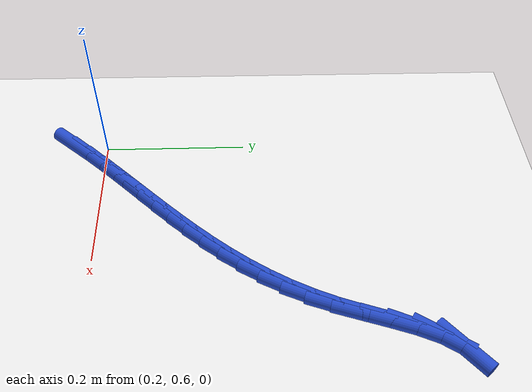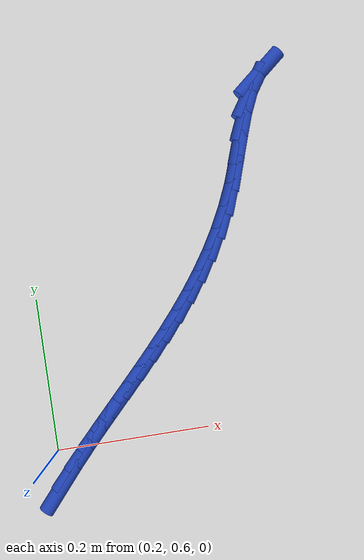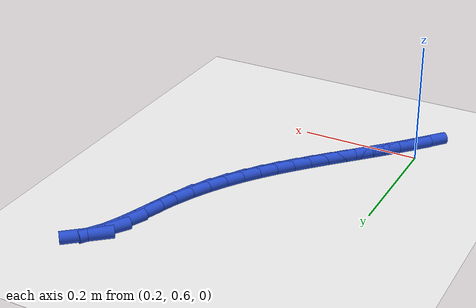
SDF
<sdf version="1.6">
 <world name="default">
  <model name="ground_plane">
   <static>1</static>
   <link name="link">
    <collision name="collision">
     <geometry><plane><normal>0 0 1</normal><size>100 100</size></plane></geometry>
     <surface><friction><ode><mu>100</mu><mu2>50</mu2></ode></friction></surface>
    </collision>
    <visual name="visual">
     <cast_shadows>0</cast_shadows>
     <geometry><plane><normal>0 0 1</normal><size>100 100</size></plane></geometry>
     <material>
      <script><uri>file://media/materials/scripts/gazebo.material</uri><name>Gazebo/WhiteGlow</name></script>
     </material>
    </visual>
   </link>
  </model>
  <model name="line">
   <link name="link_20">
    <pose>0.20040141904232106 0.5562227606023049 0.01 0 1.57 0.8612258308895455</pose>
    <collision name="collision">
     <geometry><cylinder><radius>0.01</radius><length>0.08</length></cylinder></geometry>
    </collision>
    <visual name="visual">
     <material>
      <script><name>Gazebo/Blue</name><uri>file://media/materials/scripts/gazebo.material</uri></script>
     </material>
     <geometry><cylinder><radius>0.01</radius><length>0.08</length></cylinder></geometry>
    </visual>
   </link>
   <link name="link_21">
    <pose>0.2200422611931151 0.5790933369826945 0.01 0 1.57 0.8352723841311117</pose>
    <collision name="collision">
     <geometry><cylinder><radius>0.01</radius><length>0.08</length></cylinder></geometry>
    </collision>
    <visual name="visual">
     <material>
      <script><name>Gazebo/Blue</name><uri>file://media/materials/scripts/gazebo.material</uri></script>
     </material>
     <geometry><cylinder><radius>0.01</radius><length>0.08</length></cylinder></geometry>
    </visual>
   </link>
   <link name="link_22">
    <pose>0.24019040927332286 0.6013585753275388 0.01 0 1.57 0.8161657814089618</pose>
    <collision name="collision">
     <geometry><cylinder><radius>0.01</radius><length>0.08</length></cylinder></geometry>
    </collision>
    <visual name="visual">
     <material>
      <script><name>Gazebo/Blue</name><uri>file://media/materials/scripts/gazebo.material</uri></script>
     </material>
     <geometry><cylinder><radius>0.01</radius><length>0.08</length></cylinder></geometry>
    </visual>
   </link>
   <link name="link_23">
    <pose>0.26069999667171045 0.62317071242263 0.01 0 1.57 0.8044997411409756</pose>
    <collision name="collision">
     <geometry><cylinder><radius>0.01</radius><length>0.08</length></cylinder></geometry>
    </collision>
    <visual name="visual">
     <material>
      <script><name>Gazebo/Blue</name><uri>file://media/materials/scripts/gazebo.material</uri></script>
     </material>
     <geometry><cylinder><radius>0.01</radius><length>0.08</length></cylinder></geometry>
    </visual>
   </link>
   <link name="link_24">
    <pose>0.28141834943339783 0.6446960851457605 0.01 0 1.57 0.8003451342596903</pose>
    <collision name="collision">
     <geometry><cylinder><radius>0.01</radius><length>0.08</length></cylinder></geometry>
    </collision>
    <visual name="visual">
     <material>
      <script><name>Gazebo/Blue</name><uri>file://media/materials/scripts/gazebo.material</uri></script>
     </material>
     <geometry><cylinder><radius>0.01</radius><length>0.08</length></cylinder></geometry>
    </visual>
   </link>
   <link name="link_25">
    <pose>0.3021927936035044 0.6661010303747226 0.01 0 1.57 0.8037444679993899</pose>
    <collision name="collision">
     <geometry><cylinder><radius>0.01</radius><length>0.08</length></cylinder></geometry>
    </collision>
    <visual name="visual">
     <material>
      <script><name>Gazebo/Blue</name><uri>file://media/materials/scripts/gazebo.material</uri></script>
     </material>
     <geometry><cylinder><radius>0.01</radius><length>0.08</length></cylinder></geometry>
    </visual>
   </link>
   <link name="link_26">
    <pose>0.3228706552271501 0.6875518849873091 0.01 0 1.57 0.8147184759105414</pose>
    <collision name="collision">
     <geometry><cylinder><radius>0.01</radius><length>0.08</length></cylinder></geometry>
    </collision>
    <visual name="visual">
     <material>
      <script><name>Gazebo/Blue</name><uri>file://media/materials/scripts/gazebo.material</uri></script>
     </material>
     <geometry><cylinder><radius>0.01</radius><length>0.08</length></cylinder></geometry>
    </visual>
   </link>
   <link name="link_27">
    <pose>0.3432992603494545 0.709214985861312 0.01 0 1.57 0.8332600373029755</pose>
    <collision name="collision">
     <geometry><cylinder><radius>0.01</radius><length>0.08</length></cylinder></geometry>
    </collision>
    <visual name="visual">
     <material>
      <script><name>Gazebo/Blue</name><uri>file://media/materials/scripts/gazebo.material</uri></script>
     </material>
     <geometry><cylinder><radius>0.01</radius><length>0.08</length></cylinder></geometry>
    </visual>
   </link>
   <link name="link_28">
    <pose>0.3633259350155376 0.7312566698745246 0.01 0 1.57 0.8593153615482799</pose>
    <collision name="collision">
     <geometry><cylinder><radius>0.01</radius><length>0.08</length></cylinder></geometry>
    </collision>
    <visual name="visual">
     <material>
      <script><name>Gazebo/Blue</name><uri>file://media/materials/scripts/gazebo.material</uri></script>
     </material>
     <geometry><cylinder><radius>0.01</radius><length>0.08</length></cylinder></geometry>
    </visual>
   </link>
   <link name="link_29">
    <pose>0.38279800527051877 0.7538432739047387 0.01 0 1.57 0.8927532781186259</pose>
    <collision name="collision">
     <geometry><cylinder><radius>0.01</radius><length>0.08</length></cylinder></geometry>
    </collision>
    <visual name="visual">
     <material>
      <script><name>Gazebo/Blue</name><uri>file://media/materials/scripts/gazebo.material</uri></script>
     </material>
     <geometry><cylinder><radius>0.01</radius><length>0.08</length></cylinder></geometry>
    </visual>
   </link>
   <link name="link_30">
    <pose>0.40156279715951815 0.7771411348297471 0.01 0 1.57 0.9333251137065224</pose>
    <collision name="collision">
     <geometry><cylinder><radius>0.01</radius><length>0.08</length></cylinder></geometry>
    </collision>
    <visual name="visual">
     <material>
      <script><name>Gazebo/Blue</name><uri>file://media/materials/scripts/gazebo.material</uri></script>
     </material>
     <geometry><cylinder><radius>0.01</radius><length>0.08</length></cylinder></geometry>
    </visual>
   </link>
   <link name="link_31">
    <pose>0.4194676367276551 0.8013165895273421 0.01 0 1.57 0.9806202657049099</pose>
    <collision name="collision">
     <geometry><cylinder><radius>0.01</radius><length>0.08</length></cylinder></geometry>
    </collision>
    <visual name="visual">
     <material>
      <script><name>Gazebo/Blue</name><uri>file://media/materials/scripts/gazebo.material</uri></script>
     </material>
     <geometry><cylinder><radius>0.01</radius><length>0.08</length></cylinder></geometry>
    </visual>
   </link>
   <link name="link_32">
    <pose>0.43635985002004973 0.8265359748753168 0.01 0 1.57 1.0340259318108969</pose>
    <collision name="collision">
     <geometry><cylinder><radius>0.01</radius><length>0.08</length></cylinder></geometry>
    </collision>
    <visual name="visual">
     <material>
      <script><name>Gazebo/Blue</name><uri>file://media/materials/scripts/gazebo.material</uri></script>
     </material>
     <geometry><cylinder><radius>0.01</radius><length>0.08</length></cylinder></geometry>
    </visual>
   </link>
   <link name="link_33">
    <pose>0.4520867630818216 0.8529656277514635 0.01 0 1.57 1.092702429602605</pose>
    <collision name="collision">
     <geometry><cylinder><radius>0.01</radius><length>0.08</length></cylinder></geometry>
    </collision>
    <visual name="visual">
     <material>
      <script><name>Gazebo/Blue</name><uri>file://media/materials/scripts/gazebo.material</uri></script>
     </material>
     <geometry><cylinder><radius>0.01</radius><length>0.08</length></cylinder></geometry>
    </visual>
   </link>
   <link name="link_34">
    <pose>0.4664957019580902 0.8807718850335737 0.01 0 1.57 1.1555862009645406</pose>
    <collision name="collision">
     <geometry><cylinder><radius>0.01</radius><length>0.08</length></cylinder></geometry>
    </collision>
    <visual name="visual">
     <material>
      <script><name>Gazebo/Blue</name><uri>file://media/materials/scripts/gazebo.material</uri></script>
     </material>
     <geometry><cylinder><radius>0.01</radius><length>0.08</length></cylinder></geometry>
    </visual>
   </link>
   <link name="link_35">
    <pose>0.4794339926939757 0.9101210835994413 0.01 0 1.57 1.2190289553433187</pose>
    <collision name="collision">
     <geometry><cylinder><radius>0.01</radius><length>0.08</length></cylinder></geometry>
    </collision>
    <visual name="visual">
     <material>
      <script><name>Gazebo/Blue</name><uri>file://media/materials/scripts/gazebo.material</uri></script>
     </material>
     <geometry><cylinder><radius>0.01</radius><length>0.08</length></cylinder></geometry>
    </visual>
   </link>
   <link name="link_36">
    <pose>0.4908032090118609 0.9410971183664197 0.01 0 1.57 1.2514235744648878</pose>
    <collision name="collision">
     <geometry><cylinder><radius>0.01</radius><length>0.08</length></cylinder></geometry>
    </collision>
    <visual name="visual">
     <material>
      <script><name>Gazebo/Blue</name><uri>file://media/materials/scripts/gazebo.material</uri></script>
     </material>
     <geometry><cylinder><radius>0.01</radius><length>0.08</length></cylinder></geometry>
    </visual>
   </link>
   <link name="link_37">
    <pose>0.5012420523603142 0.9726636472591392 0.01 0 1.57 1.2320879929810282</pose>
    <collision name="collision">
     <geometry><cylinder><radius>0.01</radius><length>0.08</length></cylinder></geometry>
    </collision>
    <visual name="visual">
     <material>
      <script><name>Gazebo/Blue</name><uri>file://media/materials/scripts/gazebo.material</uri></script>
     </material>
     <geometry><cylinder><radius>0.01</radius><length>0.08</length></cylinder></geometry>
    </visual>
   </link>
   <link name="link_38">
    <pose>0.5119207896846295 1.0029764908189152 0.01 0 1.57 1.152171597398014</pose>
    <collision name="collision">
     <geometry><cylinder><radius>0.01</radius><length>0.08</length></cylinder></geometry>
    </collision>
    <visual name="visual">
     <material>
      <script><name>Gazebo/Blue</name><uri>file://media/materials/scripts/gazebo.material</uri></script>
     </material>
     <geometry><cylinder><radius>0.01</radius><length>0.08</length></cylinder></geometry>
    </visual>
   </link>
   <link name="link_39">
    <pose>0.5240214406705371 1.0301736085649718 0.01 0 1.57 0.9861762365949805</pose>
    <collision name="collision">
     <geometry><cylinder><radius>0.01</radius><length>0.08</length></cylinder></geometry>
    </collision>
    <visual name="visual">
     <material>
      <script><name>Gazebo/Blue</name><uri>file://media/materials/scripts/gazebo.material</uri></script>
     </material>
     <geometry><cylinder><radius>0.01</radius><length>0.08</length></cylinder></geometry>
    </visual>
   </link>
   <link name="link_40">
    <pose>0.5387260250037664 1.0523929600165334 0.01 0 1.57 0.6990106509107171</pose>
    <collision name="collision">
     <geometry><cylinder><radius>0.01</radius><length>0.08</length></cylinder></geometry>
    </collision>
    <visual name="visual">
     <material>
      <script><name>Gazebo/Blue</name><uri>file://media/materials/scripts/gazebo.material</uri></script>
     </material>
     <geometry><cylinder><radius>0.01</radius><length>0.08</length></cylinder></geometry>
    </visual>
   </link>
  </model>
 </world>
</sdf>
